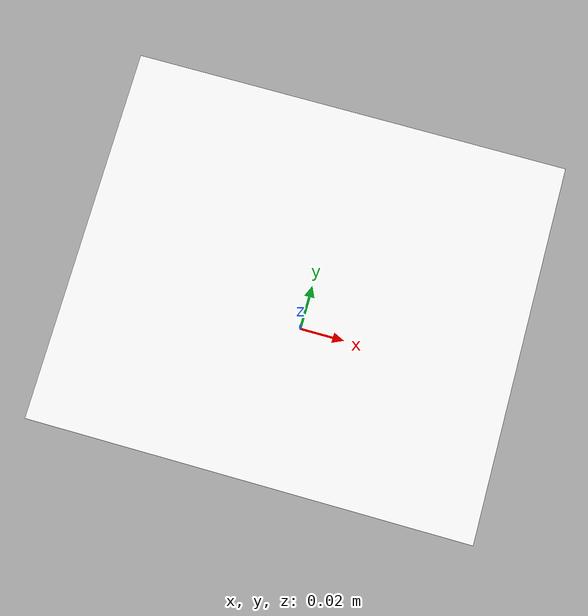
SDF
<?xml version='1.0'?>
<sdf version='1.7'>
  <model name='package_box_02'>
    <link name='main'>
      <inertial>
        <mass>0.1</mass>
        <inertia>
          <ixx>0.000220833</ixx>
          <ixy>0</ixy>
          <ixz>0</ixz>
          <iyy>0.000264167</iyy>
          <iyz>0</iyz>
          <izz>0.000283333</izz>
        </inertia>
      </inertial>
      <pose>0 0 0.055 0 -0 0</pose>
      <gravity>1</gravity>
      <visual name='main_visual'>
        <geometry>
          <box>
            <size>0.14 0.12 0.11</size>
          </box>
        </geometry>
        <material>
          <ambient>1.0 1.0 1.0 1.0</ambient>
          <diffuse>1.0 1.0 1.0 1.0</diffuse>
          <specular>0.1 0.1 0.1 1.0</specular>
          <pbr>
            <metal>
                <albedo_map>model://package_box_02/materials/textures/package_box_02.png</albedo_map>
            </metal>
          </pbr>
        </material>
      </visual>
      <collision name='main_collision'>
        <geometry>
          <box>
            <size>0.14 0.12 0.11</size>
          </box>
        </geometry>
        <surface>
          <contact>
            <collide_bitmask>0x01</collide_bitmask>
          </contact>
        </surface>
      </collision>
    </link>
    <static>0</static>
  </model>
</sdf>
